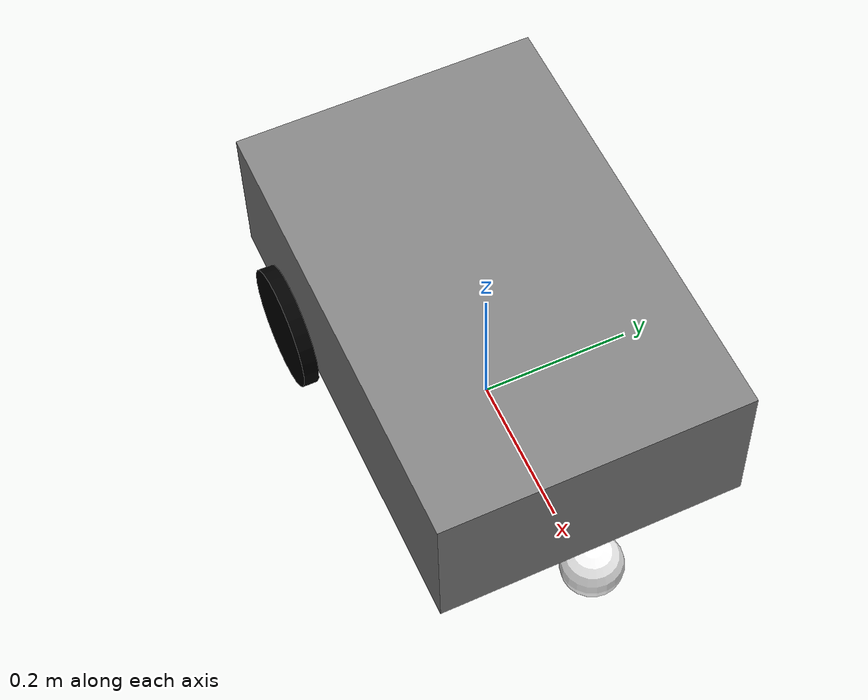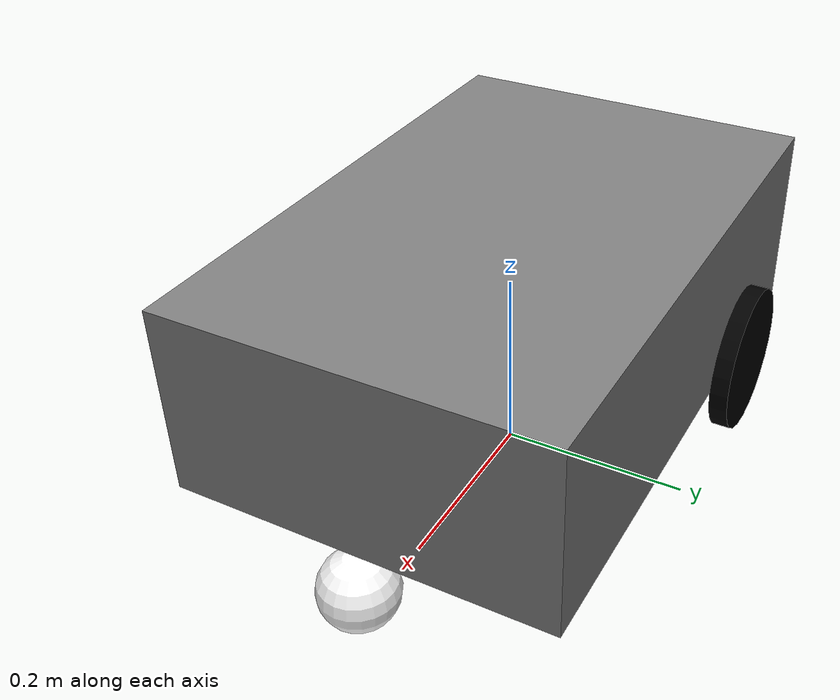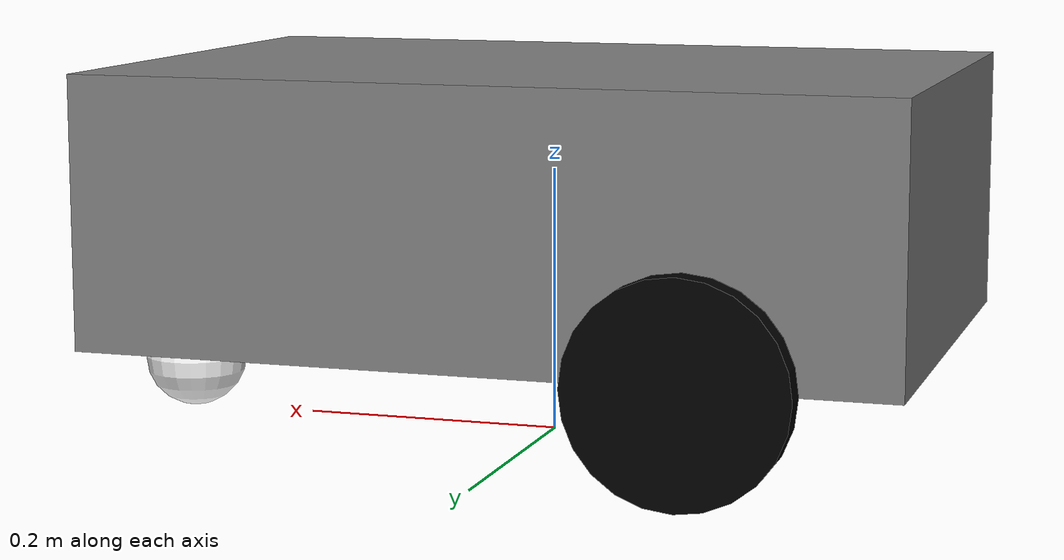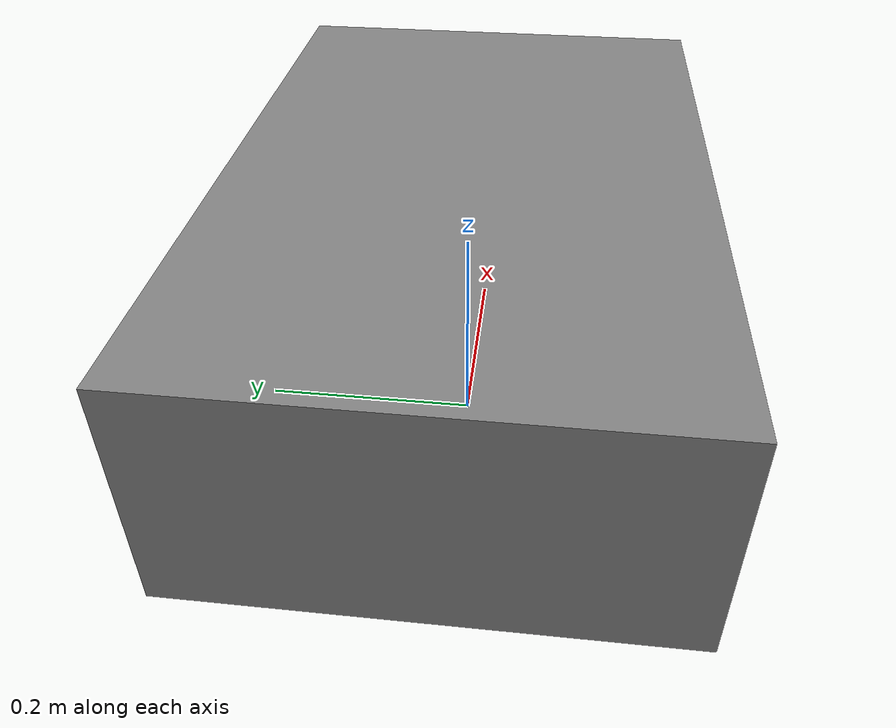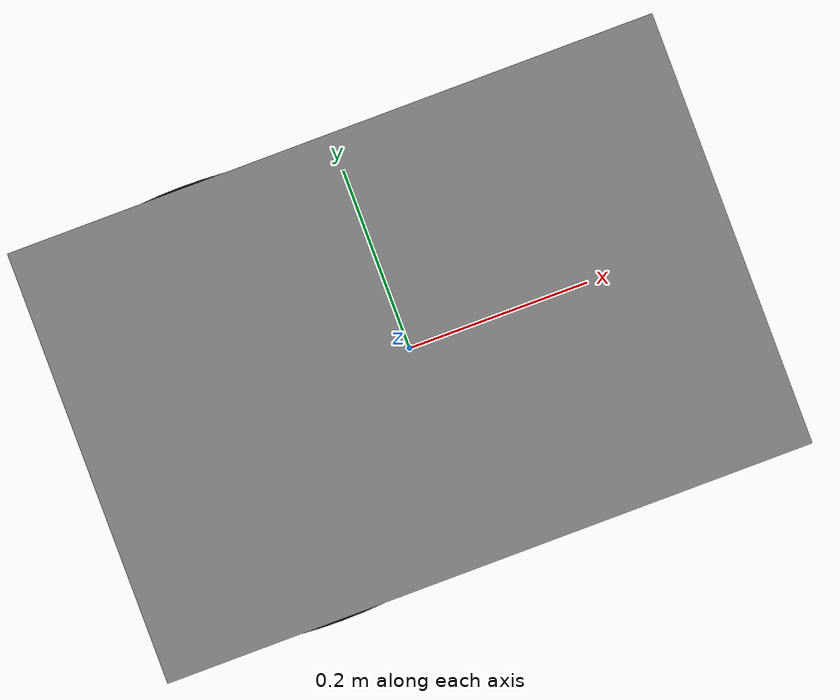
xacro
<?xml version="1.0" ?>
<robot name="sedrawy" xmlns:xacro="http://www.ros.org/wiki/xacro">

 <!-- MACRO/CONSTANTS SECTION START -->

    <xacro:include filename="common.xacro" />

    <xacro:property name="b_length" value="0.6" />

    <xacro:macro name="wheel_link" params="prefix">
        <link name="${prefix}_wheel_link">
            <visual>
                <geometry>
                    <cylinder radius="0.08" length="0.02" />
                </geometry>
                <origin xyz="0 0 0" rpy="${pi/2.0} 0 0" />
                <material name="black" />
            </visual>

<inertial>
    <mass value="1.0"/>
    <inertia ixx="0.001633" ixy="0.0" ixz="0.0"
             iyy="0.001633" iyz="0.0"
             izz="0.0032"/>
  </inertial>

<collision>
    <geometry>
      <cylinder radius="0.08" length="0.02"/>
    </geometry>
     <origin xyz="0 0 0" rpy="${pi/2.0} 0 0" />
  </collision>

        </link>
    </xacro:macro> <!-- Correct closing of the macro tag -->

<!-- Sphere Inertia Macro -->
<xacro:macro name="sphere_inertia" params="mass radius">
  <!-- Moment of inertia for a solid sphere: I = 2/5 * m * r^2 -->
  <xacro:property name="sphere_inertia_value" value="${(2/5) * mass * radius * radius}" />

  <inertial>
    <mass value="${mass}"/>
    <inertia ixx="${sphere_inertia_value}" ixy="0.0" ixz="0.0"
             iyy="${sphere_inertia_value}" iyz="0.0"
             izz="${sphere_inertia_value}"/>
  </inertial>
</xacro:macro>

<!-- Box Inertia Macro -->
<xacro:macro name="box_inertia" params="mass x y z">
  <!-- Moment of inertia for a box: Ixx = m/12 * (y^2 + z^2), Iyy = m/12 * (x^2 + z^2), Izz = m/12 * (x^2 + y^2) -->
  <xacro:property name="box_ixx" value="${(mass / 12.0) * (y * y + z * z)}" />
  <xacro:property name="box_iyy" value="${(mass / 12.0) * (x * x + z * z)}" />
  <xacro:property name="box_izz" value="${(mass / 12.0) * (x * x + y * y)}" />

  <inertial>
    <mass value="${mass}"/>
    <inertia ixx="${box_ixx}" ixy="0.0" ixz="0.0"
             iyy="${box_iyy}" iyz="0.0"
             izz="${box_izz}"/>
  </inertial>
</xacro:macro>

    <!-- MACRO/CONSTANTS SECTION END -->

    <xacro:wheel_link prefix="right" />
    <xacro:wheel_link prefix="left" />

    <link name="base_link">
        <!-- Base link content can go here -->
    </link>

    <link name="second_link">
        <visual>
            <geometry>
                <box size="${b_length} 0.4 0.2" />
            </geometry>
            <origin xyz="0 0 0.1" rpy="0 0 0" />
            <material name="grey" />
        </visual>

            <collision>
    <geometry>
      <box size="0.6 0.4 0.2"/>

    </geometry>
     <origin xyz="0 0 0.1" rpy="0 0 0" />
  </collision>

        <xacro:box_inertia mass="1.0" x="0.6" y="0.4" z="0.2"/>
    </link>

      <!-- Define the link (the sphere itself) -->
  <link name="sphere_link">

    <!-- Visual representation of the sphere -->
    <visual>
      <geometry>
        <sphere radius="0.04"/> <!-- Sphere with a radius of 0.04 meters -->
      </geometry>
      <material name="white">
        <color rgba="1 1 1 1"/>
      </material>
    </visual>

    <!-- Collision properties of the sphere -->
    <collision>
      <geometry>
        <sphere radius="0.04"/> <!-- Same radius as visual -->
      </geometry>
    </collision>

   <xacro:sphere_inertia mass="1.0" radius="0.04"/>

  </link>

   <!-- Define the joint connecting the sphere to the world (fixed) -->
  <joint name="fixed_joint" type="fixed">
    <parent link="second_link"/>
    <child link="sphere_link"/>
    <origin xyz="0.3 0 -0.04" rpy="0 0 0"/>
  </joint>

    <joint name="base_second" type="fixed">
        <parent link="base_link" />
        <child link="second_link" />
        <origin xyz="0 0 0.08" rpy="0 0 0"/>
    </joint>

    <joint name="base_rwheel" type="continuous">
        <parent link="second_link" />
        <child link="right_wheel_link" />
        <origin xyz="-0.15 0.21 0.0" rpy="0 0 0"/>
        <axis xyz="0 1 0" />
    </joint>
    <joint name="base_lwheel" type="continuous">
        <parent link="second_link" />
        <child link="left_wheel_link" />
        <origin xyz="-0.15 -0.21 0.0" rpy="0 0 0"/>
        <axis xyz="0 1 0" />
    </joint>

<gazebo>
  <plugin name="differential_drive_controller" filename="libgazebo_ros_diff_drive.so">
    <!-- Update rate -->
    <updateRate>50</updateRate>
    <!-- wheel separation and diameter -->
    <left_joint>base_lwheel</left_joint>
    <right_joint>base_lwheel</right_joint>
    <wheel_separation>0.6</wheel_separation>
    <wheel_diameter>0.15</wheel_diameter>
    <!-- odometry -->
    <publish_odom>true</publish_odom>
    <odometry_topic>/odom</odometry_topic>
    <odometry_frame>odom</odometry_frame>
    <robot_base_frame>base_link</robot_base_frame>
  </plugin>
</gazebo>

</robot>

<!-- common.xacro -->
<robot xmlns:xacro="http://www.ros.org/wiki/xacro">

    <material name="green">
        <color rgba="0.1 0.5 0 1"/>
    </material>

    <material name="grey">
        <color rgba="0.5 0.5 0.5 1"/>
    </material>

    <material name="black">
        <color rgba="0 0 0 1"/>
    </material>

</robot>
